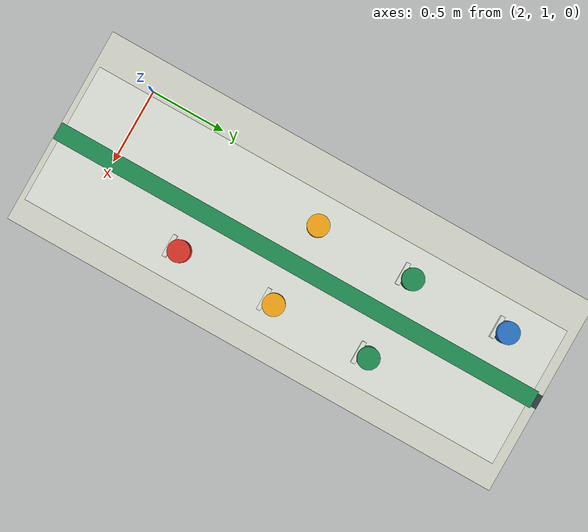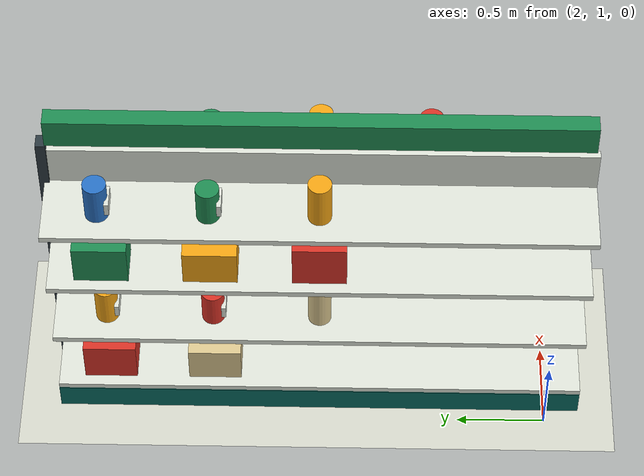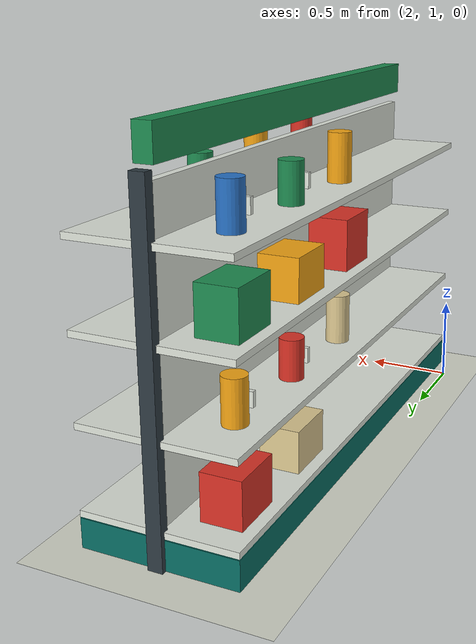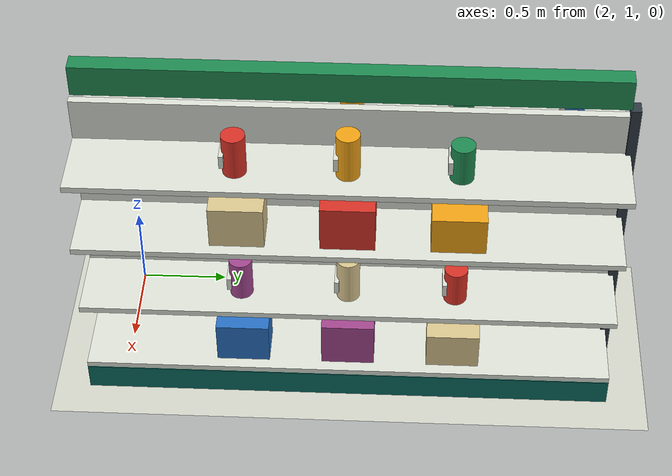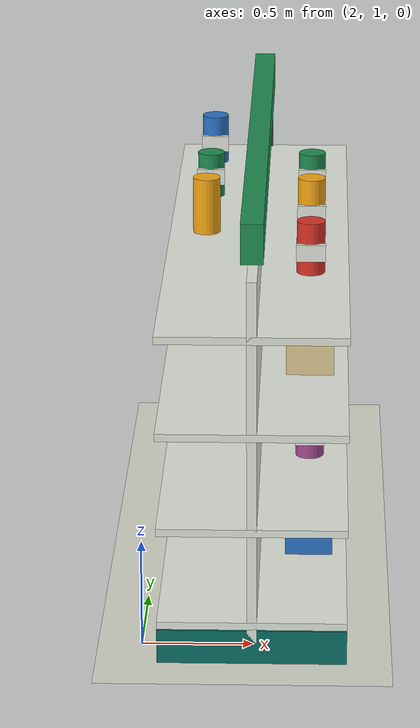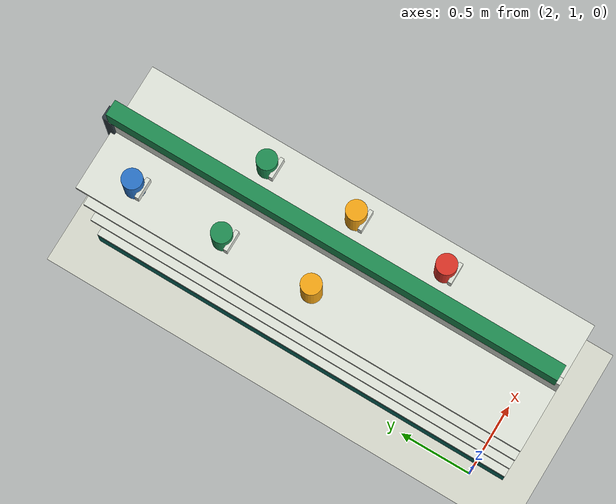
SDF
<sdf version="1.6">
 <world name="convenience_store">
  <model name="ground_plane">
   <static>true</static>
   <link name="ground_link">
    <collision name="ground_collision">
     <geometry><plane><normal>0 0 1</normal><size>100 100</size></plane></geometry>
     <surface><friction><ode><mu>1.0</mu><mu2>1.0</mu2></ode></friction></surface>
    </collision>
    <visual name="ground_visual">
     <geometry><plane><normal>0 0 1</normal><size>100 100</size></plane></geometry>
     <material><ambient>.84 .85 .80 1</ambient><diffuse>.84 .85 .80 1</diffuse></material>
    </visual>
   </link>
  </model>
  <model name="gondola_2_plinth">
   <static>true</static>
   <pose>2.5 2.3 0.08 0 0 0</pose>
   <link name="body">
    <collision name="body_collision">
     <geometry><box><size>0.85 3.0 0.16</size></box></geometry>
     <surface><friction><ode><mu>.8</mu><mu2>.8</mu2></ode></friction></surface>
    </collision>
    <visual name="body_visual">
     <geometry><box><size>0.85 3.0 0.16</size></box></geometry>
     <material><ambient>.03 .43 .39 1</ambient><diffuse>.03 .43 .39 1</diffuse></material>
    </visual>
   </link>
  </model>
  <model name="gondola_2_divider">
   <static>true</static>
   <pose>2.5 2.3 0.95 0 0 0</pose>
   <link name="body">
    <collision name="body_collision">
     <geometry><box><size>0.045 3.0 1.7</size></box></geometry>
     <surface><friction><ode><mu>.8</mu><mu2>.8</mu2></ode></friction></surface>
    </collision>
    <visual name="body_visual">
     <geometry><box><size>0.045 3.0 1.7</size></box></geometry>
     <material><ambient>.88 .90 .86 1</ambient><diffuse>.88 .90 .86 1</diffuse></material>
    </visual>
   </link>
  </model>
  <model name="gondola_2_end_1">
   <static>true</static>
   <pose>2.5 3.8 0.925 0 0 0</pose>
   <link name="body">
    <collision name="body_collision">
     <geometry><box><size>0.08 0.055 1.85</size></box></geometry>
     <surface><friction><ode><mu>.8</mu><mu2>.8</mu2></ode></friction></surface>
    </collision>
    <visual name="body_visual">
     <geometry><box><size>0.08 0.055 1.85</size></box></geometry>
     <material><ambient>.18 .23 .26 1</ambient><diffuse>.18 .23 .26 1</diffuse></material>
    </visual>
   </link>
  </model>
  <model name="gondola_2_shelf_0">
   <static>true</static>
   <pose>2.5 2.3 0.1825 0 0 0</pose>
   <link name="body">
    <collision name="body_collision">
     <geometry><box><size>0.85 3.0 0.035</size></box></geometry>
     <surface><friction><ode><mu>.8</mu><mu2>.8</mu2></ode></friction></surface>
    </collision>
    <visual name="body_visual">
     <geometry><box><size>0.85 3.0 0.035</size></box></geometry>
     <material><ambient>.88 .90 .86 1</ambient><diffuse>.88 .90 .86 1</diffuse></material>
    </visual>
   </link>
  </model>
  <model name="gondola_2_goods_0_-1_3">
   <static>true</static>
   <pose>2.25 2.8999999999999995 0.315 0 0 0</pose>
   <link name="body">
    <collision name="body_collision">
     <geometry><box><size>0.22 0.3 0.23</size></box></geometry>
     <surface><friction><ode><mu>.8</mu><mu2>.8</mu2></ode></friction></surface>
    </collision>
    <visual name="body_visual">
     <geometry><box><size>0.22 0.3 0.23</size></box></geometry>
     <material><ambient>.87 .79 .57 1</ambient><diffuse>.87 .79 .57 1</diffuse></material>
    </visual>
   </link>
  </model>
  <model name="gondola_2_goods_0_-1_4">
   <static>true</static>
   <pose>2.25 3.5 0.3275 0 0 0</pose>
   <link name="body">
    <collision name="body_collision">
     <geometry><box><size>0.22 0.3 0.255</size></box></geometry>
     <surface><friction><ode><mu>.8</mu><mu2>.8</mu2></ode></friction></surface>
    </collision>
    <visual name="body_visual">
     <geometry><box><size>0.22 0.3 0.255</size></box></geometry>
     <material><ambient>.86 .20 .15 1</ambient><diffuse>.86 .20 .15 1</diffuse></material>
    </visual>
   </link>
  </model>
  <model name="gondola_2_goods_0_1_1">
   <static>true</static>
   <pose>2.75 1.6999999999999997 0.3275 0 0 0</pose>
   <link name="body">
    <collision name="body_collision">
     <geometry><box><size>0.22 0.3 0.255</size></box></geometry>
     <surface><friction><ode><mu>.8</mu><mu2>.8</mu2></ode></friction></surface>
    </collision>
    <visual name="body_visual">
     <geometry><box><size>0.22 0.3 0.255</size></box></geometry>
     <material><ambient>.16 .45 .78 1</ambient><diffuse>.16 .45 .78 1</diffuse></material>
    </visual>
   </link>
  </model>
  <model name="gondola_2_goods_0_1_2">
   <static>true</static>
   <pose>2.75 2.3 0.34 0 0 0</pose>
   <link name="body">
    <collision name="body_collision">
     <geometry><box><size>0.22 0.3 0.28</size></box></geometry>
     <surface><friction><ode><mu>.8</mu><mu2>.8</mu2></ode></friction></surface>
    </collision>
    <visual name="body_visual">
     <geometry><box><size>0.22 0.3 0.28</size></box></geometry>
     <material><ambient>.65 .28 .57 1</ambient><diffuse>.65 .28 .57 1</diffuse></material>
    </visual>
   </link>
  </model>
  <model name="gondola_2_goods_0_1_3">
   <static>true</static>
   <pose>2.75 2.8999999999999995 0.315 0 0 0</pose>
   <link name="body">
    <collision name="body_collision">
     <geometry><box><size>0.22 0.3 0.23</size></box></geometry>
     <surface><friction><ode><mu>.8</mu><mu2>.8</mu2></ode></friction></surface>
    </collision>
    <visual name="body_visual">
     <geometry><box><size>0.22 0.3 0.23</size></box></geometry>
     <material><ambient>.87 .79 .57 1</ambient><diffuse>.87 .79 .57 1</diffuse></material>
    </visual>
   </link>
  </model>
  <model name="gondola_2_shelf_1">
   <static>true</static>
   <pose>2.5 2.3 0.6325000000000001 0 0 0</pose>
   <link name="body">
    <collision name="body_collision">
     <geometry><box><size>0.85 3.0 0.035</size></box></geometry>
     <surface><friction><ode><mu>.8</mu><mu2>.8</mu2></ode></friction></surface>
    </collision>
    <visual name="body_visual">
     <geometry><box><size>0.85 3.0 0.035</size></box></geometry>
     <material><ambient>.88 .90 .86 1</ambient><diffuse>.88 .90 .86 1</diffuse></material>
    </visual>
   </link>
  </model>
  <model name="gondola_2_goods_1_-1_2">
   <static>true</static>
   <pose>2.25 2.3 0.785 0 0 0</pose>
   <link name="body">
    <collision name="body_collision">
     <geometry><cylinder><length>0.27</length><radius>0.065</radius></cylinder></geometry>
     <surface><friction><ode><mu>.8</mu><mu2>.8</mu2></ode></friction></surface>
    </collision>
    <visual name="body_visual">
     <geometry><cylinder><length>0.27</length><radius>0.065</radius></cylinder></geometry>
     <material><ambient>.87 .79 .57 1</ambient><diffuse>.87 .79 .57 1</diffuse></material>
    </visual>
   </link>
  </model>
  <model name="gondola_2_goods_1_-1_3">
   <static>true</static>
   <pose>2.25 2.8999999999999995 0.76 0 0 0</pose>
   <link name="body">
    <collision name="body_collision">
     <geometry><cylinder><length>0.22</length><radius>0.065</radius></cylinder></geometry>
     <surface><friction><ode><mu>.8</mu><mu2>.8</mu2></ode></friction></surface>
    </collision>
    <visual name="body_visual">
     <geometry><cylinder><length>0.22</length><radius>0.065</radius></cylinder></geometry>
     <material><ambient>.86 .20 .15 1</ambient><diffuse>.86 .20 .15 1</diffuse></material>
    </visual>
   </link>
  </model>
  <model name="gondola_2_goods_1_-1_3_label">
   <static>true</static>
   <pose>2.25 2.8379999999999996 0.76 0 0 0</pose>
   <link name="body">
    <visual name="body_visual">
     <geometry><box><size>0.135 0.025 0.08</size></box></geometry>
     <material><ambient>.88 .90 .86 1</ambient><diffuse>.88 .90 .86 1</diffuse></material>
    </visual>
   </link>
  </model>
  <model name="gondola_2_goods_1_-1_4">
   <static>true</static>
   <pose>2.25 3.5 0.7725 0 0 0</pose>
   <link name="body">
    <collision name="body_collision">
     <geometry><cylinder><length>0.245</length><radius>0.065</radius></cylinder></geometry>
     <surface><friction><ode><mu>.8</mu><mu2>.8</mu2></ode></friction></surface>
    </collision>
    <visual name="body_visual">
     <geometry><cylinder><length>0.245</length><radius>0.065</radius></cylinder></geometry>
     <material><ambient>.96 .65 .08 1</ambient><diffuse>.96 .65 .08 1</diffuse></material>
    </visual>
   </link>
  </model>
  <model name="gondola_2_goods_1_-1_4_label">
   <static>true</static>
   <pose>2.25 3.438 0.76 0 0 0</pose>
   <link name="body">
    <visual name="body_visual">
     <geometry><box><size>0.135 0.025 0.08</size></box></geometry>
     <material><ambient>.88 .90 .86 1</ambient><diffuse>.88 .90 .86 1</diffuse></material>
    </visual>
   </link>
  </model>
  <model name="gondola_2_goods_1_1_1">
   <static>true</static>
   <pose>2.75 1.6999999999999997 0.7725 0 0 0</pose>
   <link name="body">
    <collision name="body_collision">
     <geometry><cylinder><length>0.245</length><radius>0.065</radius></cylinder></geometry>
     <surface><friction><ode><mu>.8</mu><mu2>.8</mu2></ode></friction></surface>
    </collision>
    <visual name="body_visual">
     <geometry><cylinder><length>0.245</length><radius>0.065</radius></cylinder></geometry>
     <material><ambient>.65 .28 .57 1</ambient><diffuse>.65 .28 .57 1</diffuse></material>
    </visual>
   </link>
  </model>
  <model name="gondola_2_goods_1_1_1_label">
   <static>true</static>
   <pose>2.75 1.6379999999999997 0.76 0 0 0</pose>
   <link name="body">
    <visual name="body_visual">
     <geometry><box><size>0.135 0.025 0.08</size></box></geometry>
     <material><ambient>.88 .90 .86 1</ambient><diffuse>.88 .90 .86 1</diffuse></material>
    </visual>
   </link>
  </model>
  <model name="gondola_2_goods_1_1_2">
   <static>true</static>
   <pose>2.75 2.3 0.785 0 0 0</pose>
   <link name="body">
    <collision name="body_collision">
     <geometry><cylinder><length>0.27</length><radius>0.065</radius></cylinder></geometry>
     <surface><friction><ode><mu>.8</mu><mu2>.8</mu2></ode></friction></surface>
    </collision>
    <visual name="body_visual">
     <geometry><cylinder><length>0.27</length><radius>0.065</radius></cylinder></geometry>
     <material><ambient>.87 .79 .57 1</ambient><diffuse>.87 .79 .57 1</diffuse></material>
    </visual>
   </link>
  </model>
  <model name="gondola_2_goods_1_1_2_label">
   <static>true</static>
   <pose>2.75 2.238 0.76 0 0 0</pose>
   <link name="body">
    <visual name="body_visual">
     <geometry><box><size>0.135 0.025 0.08</size></box></geometry>
     <material><ambient>.88 .90 .86 1</ambient><diffuse>.88 .90 .86 1</diffuse></material>
    </visual>
   </link>
  </model>
  <model name="gondola_2_goods_1_1_3">
   <static>true</static>
   <pose>2.75 2.8999999999999995 0.76 0 0 0</pose>
   <link name="body">
    <collision name="body_collision">
     <geometry><cylinder><length>0.22</length><radius>0.065</radius></cylinder></geometry>
     <surface><friction><ode><mu>.8</mu><mu2>.8</mu2></ode></friction></surface>
    </collision>
    <visual name="body_visual">
     <geometry><cylinder><length>0.22</length><radius>0.065</radius></cylinder></geometry>
     <material><ambient>.86 .20 .15 1</ambient><diffuse>.86 .20 .15 1</diffuse></material>
    </visual>
   </link>
  </model>
  <model name="gondola_2_goods_1_1_3_label">
   <static>true</static>
   <pose>2.75 2.8379999999999996 0.76 0 0 0</pose>
   <link name="body">
    <visual name="body_visual">
     <geometry><box><size>0.135 0.025 0.08</size></box></geometry>
     <material><ambient>.88 .90 .86 1</ambient><diffuse>.88 .90 .86 1</diffuse></material>
    </visual>
   </link>
  </model>
  <model name="gondola_2_shelf_2">
   <static>true</static>
   <pose>2.5 2.3 1.0825 0 0 0</pose>
   <link name="body">
    <collision name="body_collision">
     <geometry><box><size>0.85 3.0 0.035</size></box></geometry>
     <surface><friction><ode><mu>.8</mu><mu2>.8</mu2></ode></friction></surface>
    </collision>
    <visual name="body_visual">
     <geometry><box><size>0.85 3.0 0.035</size></box></geometry>
     <material><ambient>.88 .90 .86 1</ambient><diffuse>.88 .90 .86 1</diffuse></material>
    </visual>
   </link>
  </model>
  <model name="gondola_2_goods_2_-1_2">
   <static>true</static>
   <pose>2.25 2.3 1.2400000000000002 0 0 0</pose>
   <link name="body">
    <collision name="body_collision">
     <geometry><box><size>0.22 0.3 0.28</size></box></geometry>
     <surface><friction><ode><mu>.8</mu><mu2>.8</mu2></ode></friction></surface>
    </collision>
    <visual name="body_visual">
     <geometry><box><size>0.22 0.3 0.28</size></box></geometry>
     <material><ambient>.86 .20 .15 1</ambient><diffuse>.86 .20 .15 1</diffuse></material>
    </visual>
   </link>
  </model>
  <model name="gondola_2_goods_2_-1_3">
   <static>true</static>
   <pose>2.25 2.8999999999999995 1.215 0 0 0</pose>
   <link name="body">
    <collision name="body_collision">
     <geometry><box><size>0.22 0.3 0.23</size></box></geometry>
     <surface><friction><ode><mu>.8</mu><mu2>.8</mu2></ode></friction></surface>
    </collision>
    <visual name="body_visual">
     <geometry><box><size>0.22 0.3 0.23</size></box></geometry>
     <material><ambient>.96 .65 .08 1</ambient><diffuse>.96 .65 .08 1</diffuse></material>
    </visual>
   </link>
  </model>
  <model name="gondola_2_goods_2_-1_4">
   <static>true</static>
   <pose>2.25 3.5 1.2275 0 0 0</pose>
   <link name="body">
    <collision name="body_collision">
     <geometry><box><size>0.22 0.3 0.255</size></box></geometry>
     <surface><friction><ode><mu>.8</mu><mu2>.8</mu2></ode></friction></surface>
    </collision>
    <visual name="body_visual">
     <geometry><box><size>0.22 0.3 0.255</size></box></geometry>
     <material><ambient>.12 .55 .32 1</ambient><diffuse>.12 .55 .32 1</diffuse></material>
    </visual>
   </link>
  </model>
  <model name="gondola_2_goods_2_1_1">
   <static>true</static>
   <pose>2.75 1.6999999999999997 1.2275 0 0 0</pose>
   <link name="body">
    <collision name="body_collision">
     <geometry><box><size>0.22 0.3 0.255</size></box></geometry>
     <surface><friction><ode><mu>.8</mu><mu2>.8</mu2></ode></friction></surface>
    </collision>
    <visual name="body_visual">
     <geometry><box><size>0.22 0.3 0.255</size></box></geometry>
     <material><ambient>.87 .79 .57 1</ambient><diffuse>.87 .79 .57 1</diffuse></material>
    </visual>
   </link>
  </model>
  <model name="gondola_2_goods_2_1_2">
   <static>true</static>
   <pose>2.75 2.3 1.2400000000000002 0 0 0</pose>
   <link name="body">
    <collision name="body_collision">
     <geometry><box><size>0.22 0.3 0.28</size></box></geometry>
     <surface><friction><ode><mu>.8</mu><mu2>.8</mu2></ode></friction></surface>
    </collision>
    <visual name="body_visual">
     <geometry><box><size>0.22 0.3 0.28</size></box></geometry>
     <material><ambient>.86 .20 .15 1</ambient><diffuse>.86 .20 .15 1</diffuse></material>
    </visual>
   </link>
  </model>
  <model name="gondola_2_goods_2_1_3">
   <static>true</static>
   <pose>2.75 2.8999999999999995 1.215 0 0 0</pose>
   <link name="body">
    <collision name="body_collision">
     <geometry><box><size>0.22 0.3 0.23</size></box></geometry>
     <surface><friction><ode><mu>.8</mu><mu2>.8</mu2></ode></friction></surface>
    </collision>
    <visual name="body_visual">
     <geometry><box><size>0.22 0.3 0.23</size></box></geometry>
     <material><ambient>.96 .65 .08 1</ambient><diffuse>.96 .65 .08 1</diffuse></material>
    </visual>
   </link>
  </model>
  <model name="gondola_2_shelf_3">
   <static>true</static>
   <pose>2.5 2.3 1.5325 0 0 0</pose>
   <link name="body">
    <collision name="body_collision">
     <geometry><box><size>0.85 3.0 0.035</size></box></geometry>
     <surface><friction><ode><mu>.8</mu><mu2>.8</mu2></ode></friction></surface>
    </collision>
    <visual name="body_visual">
     <geometry><box><size>0.85 3.0 0.035</size></box></geometry>
     <material><ambient>.88 .90 .86 1</ambient><diffuse>.88 .90 .86 1</diffuse></material>
    </visual>
   </link>
  </model>
  <model name="gondola_2_goods_3_-1_2">
   <static>true</static>
   <pose>2.25 2.3 1.685 0 0 0</pose>
   <link name="body">
    <collision name="body_collision">
     <geometry><cylinder><length>0.27</length><radius>0.065</radius></cylinder></geometry>
     <surface><friction><ode><mu>.8</mu><mu2>.8</mu2></ode></friction></surface>
    </collision>
    <visual name="body_visual">
     <geometry><cylinder><length>0.27</length><radius>0.065</radius></cylinder></geometry>
     <material><ambient>.96 .65 .08 1</ambient><diffuse>.96 .65 .08 1</diffuse></material>
    </visual>
   </link>
  </model>
  <model name="gondola_2_goods_3_-1_3">
   <static>true</static>
   <pose>2.25 2.8999999999999995 1.6600000000000001 0 0 0</pose>
   <link name="body">
    <collision name="body_collision">
     <geometry><cylinder><length>0.22</length><radius>0.065</radius></cylinder></geometry>
     <surface><friction><ode><mu>.8</mu><mu2>.8</mu2></ode></friction></surface>
    </collision>
    <visual name="body_visual">
     <geometry><cylinder><length>0.22</length><radius>0.065</radius></cylinder></geometry>
     <material><ambient>.12 .55 .32 1</ambient><diffuse>.12 .55 .32 1</diffuse></material>
    </visual>
   </link>
  </model>
  <model name="gondola_2_goods_3_-1_3_label">
   <static>true</static>
   <pose>2.25 2.8379999999999996 1.6600000000000001 0 0 0</pose>
   <link name="body">
    <visual name="body_visual">
     <geometry><box><size>0.135 0.025 0.08</size></box></geometry>
     <material><ambient>.88 .90 .86 1</ambient><diffuse>.88 .90 .86 1</diffuse></material>
    </visual>
   </link>
  </model>
  <model name="gondola_2_goods_3_-1_4">
   <static>true</static>
   <pose>2.25 3.5 1.6725 0 0 0</pose>
   <link name="body">
    <collision name="body_collision">
     <geometry><cylinder><length>0.245</length><radius>0.065</radius></cylinder></geometry>
     <surface><friction><ode><mu>.8</mu><mu2>.8</mu2></ode></friction></surface>
    </collision>
    <visual name="body_visual">
     <geometry><cylinder><length>0.245</length><radius>0.065</radius></cylinder></geometry>
     <material><ambient>.16 .45 .78 1</ambient><diffuse>.16 .45 .78 1</diffuse></material>
    </visual>
   </link>
  </model>
  <model name="gondola_2_goods_3_-1_4_label">
   <static>true</static>
   <pose>2.25 3.438 1.6600000000000001 0 0 0</pose>
   <link name="body">
    <visual name="body_visual">
     <geometry><box><size>0.135 0.025 0.08</size></box></geometry>
     <material><ambient>.88 .90 .86 1</ambient><diffuse>.88 .90 .86 1</diffuse></material>
    </visual>
   </link>
  </model>
  <model name="gondola_2_goods_3_1_1">
   <static>true</static>
   <pose>2.75 1.6999999999999997 1.6725 0 0 0</pose>
   <link name="body">
    <collision name="body_collision">
     <geometry><cylinder><length>0.245</length><radius>0.065</radius></cylinder></geometry>
     <surface><friction><ode><mu>.8</mu><mu2>.8</mu2></ode></friction></surface>
    </collision>
    <visual name="body_visual">
     <geometry><cylinder><length>0.245</length><radius>0.065</radius></cylinder></geometry>
     <material><ambient>.86 .20 .15 1</ambient><diffuse>.86 .20 .15 1</diffuse></material>
    </visual>
   </link>
  </model>
  <model name="gondola_2_goods_3_1_1_label">
   <static>true</static>
   <pose>2.75 1.6379999999999997 1.6600000000000001 0 0 0</pose>
   <link name="body">
    <visual name="body_visual">
     <geometry><box><size>0.135 0.025 0.08</size></box></geometry>
     <material><ambient>.88 .90 .86 1</ambient><diffuse>.88 .90 .86 1</diffuse></material>
    </visual>
   </link>
  </model>
  <model name="gondola_2_goods_3_1_2">
   <static>true</static>
   <pose>2.75 2.3 1.685 0 0 0</pose>
   <link name="body">
    <collision name="body_collision">
     <geometry><cylinder><length>0.27</length><radius>0.065</radius></cylinder></geometry>
     <surface><friction><ode><mu>.8</mu><mu2>.8</mu2></ode></friction></surface>
    </collision>
    <visual name="body_visual">
     <geometry><cylinder><length>0.27</length><radius>0.065</radius></cylinder></geometry>
     <material><ambient>.96 .65 .08 1</ambient><diffuse>.96 .65 .08 1</diffuse></material>
    </visual>
   </link>
  </model>
  <model name="gondola_2_goods_3_1_2_label">
   <static>true</static>
   <pose>2.75 2.238 1.6600000000000001 0 0 0</pose>
   <link name="body">
    <visual name="body_visual">
     <geometry><box><size>0.135 0.025 0.08</size></box></geometry>
     <material><ambient>.88 .90 .86 1</ambient><diffuse>.88 .90 .86 1</diffuse></material>
    </visual>
   </link>
  </model>
  <model name="gondola_2_goods_3_1_3">
   <static>true</static>
   <pose>2.75 2.8999999999999995 1.6600000000000001 0 0 0</pose>
   <link name="body">
    <collision name="body_collision">
     <geometry><cylinder><length>0.22</length><radius>0.065</radius></cylinder></geometry>
     <surface><friction><ode><mu>.8</mu><mu2>.8</mu2></ode></friction></surface>
    </collision>
    <visual name="body_visual">
     <geometry><cylinder><length>0.22</length><radius>0.065</radius></cylinder></geometry>
     <material><ambient>.12 .55 .32 1</ambient><diffuse>.12 .55 .32 1</diffuse></material>
    </visual>
   </link>
  </model>
  <model name="gondola_2_goods_3_1_3_label">
   <static>true</static>
   <pose>2.75 2.8379999999999996 1.6600000000000001 0 0 0</pose>
   <link name="body">
    <visual name="body_visual">
     <geometry><box><size>0.135 0.025 0.08</size></box></geometry>
     <material><ambient>.88 .90 .86 1</ambient><diffuse>.88 .90 .86 1</diffuse></material>
    </visual>
   </link>
  </model>
  <model name="gondola_2_header">
   <static>true</static>
   <pose>2.5 2.3 1.96 0 0 0</pose>
   <link name="body">
    <collision name="body_collision">
     <geometry><box><size>0.1 2.95 0.18</size></box></geometry>
     <surface><friction><ode><mu>.8</mu><mu2>.8</mu2></ode></friction></surface>
    </collision>
    <visual name="body_visual">
     <geometry><box><size>0.1 2.95 0.18</size></box></geometry>
     <material><ambient>.12 .55 .32 1</ambient><diffuse>.12 .55 .32 1</diffuse></material>
    </visual>
   </link>
  </model>
 </world>
</sdf>
